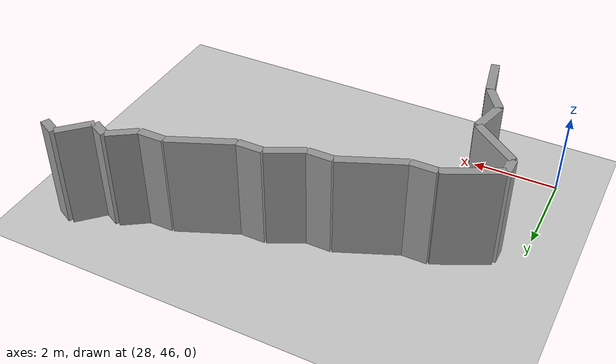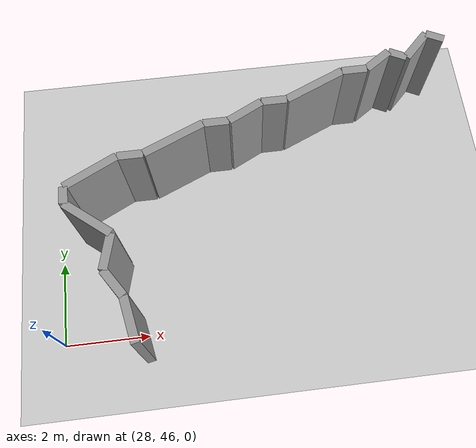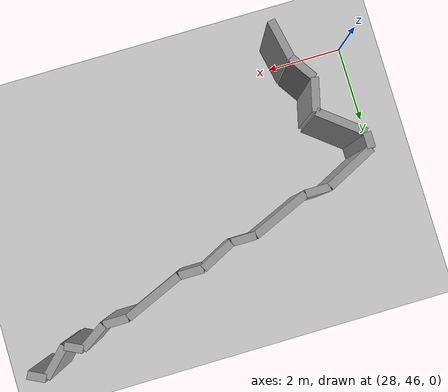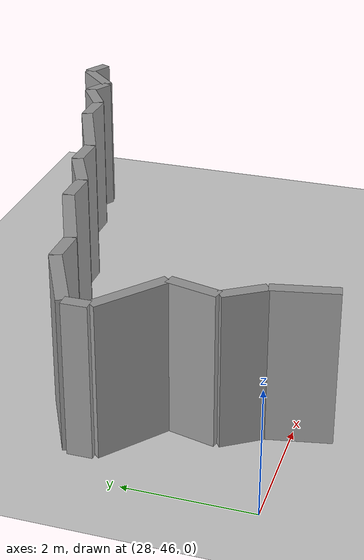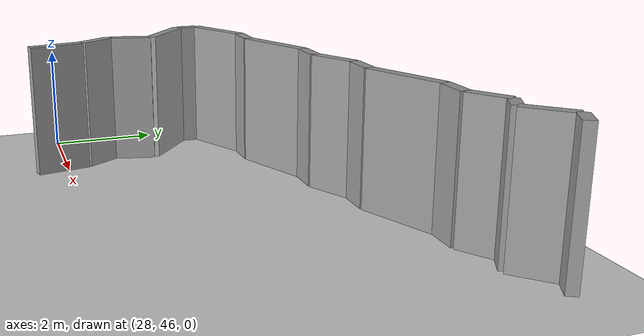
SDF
<sdf version="1.4">
 <world name="1_wall">
  <model name="ground_plane">
   <static>1</static>
   <link name="link">
    <collision name="collision">
     <geometry><plane><normal>0 0 1</normal><size>1000 1000</size></plane></geometry>
     <surface><friction><ode><mu>100</mu><mu2>50</mu2></ode></friction></surface>
    </collision>
    <visual name="visual">
     <cast_shadows>0</cast_shadows>
     <geometry><plane><normal>0 0 1</normal><size>10000 10000</size></plane></geometry>
     <material>
      <script><uri>file://media/materials/scripts/gazebo.material</uri><name>Gazebo/Grey</name></script>
     </material>
    </visual>
    <velocity_decay><linear>0</linear><angular>0</angular></velocity_decay>
   </link>
  </model>
  <model name="Wall_500">
   <static>1</static>
   <link name="Wall_500">
    <collision name="Wall_Collision_500">
     <geometry><box><size>1.01980390272 0.2 2.5</size></box></geometry>
     <pose>0 0 1.25 0 -0 0</pose>
    </collision>
    <visual name="Wall_Visual_500">
     <pose>0 0 1.25 0 -0 0</pose>
     <geometry><box><size>1.01980390272 0.2 2.5</size></box></geometry>
     <material>
      <script><uri>file://media/materials/scripts/gazebo.material</uri><name>Gazebo/Grey</name></script>
     </material>
    </visual>
    <velocity_decay><linear>0</linear><angular>0</angular></velocity_decay>
    <pose>29.9 45.9 0 0 0 1.76819188664</pose>
   </link>
  </model>
  <model name="Wall_501">
   <static>1</static>
   <link name="Wall_501">
    <collision name="Wall_Collision_501">
     <geometry><box><size>0.721110255093 0.2 2.5</size></box></geometry>
     <pose>0 0 1.25 0 -0 0</pose>
    </collision>
    <visual name="Wall_Visual_501">
     <pose>0 0 1.25 0 -0 0</pose>
     <geometry><box><size>0.721110255093 0.2 2.5</size></box></geometry>
     <material>
      <script><uri>file://media/materials/scripts/gazebo.material</uri><name>Gazebo/Grey</name></script>
     </material>
    </visual>
    <velocity_decay><linear>0</linear><angular>0</angular></velocity_decay>
    <pose>29.6 46.7 0 0 0 2.15879893034</pose>
   </link>
  </model>
  <model name="Wall_502">
   <static>1</static>
   <link name="Wall_502">
    <collision name="Wall_Collision_502">
     <geometry><box><size>0.824621125124 0.2 2.5</size></box></geometry>
     <pose>0 0 1.25 0 -0 0</pose>
    </collision>
    <visual name="Wall_Visual_502">
     <pose>0 0 1.25 0 -0 0</pose>
     <geometry><box><size>0.824621125124 0.2 2.5</size></box></geometry>
     <material>
      <script><uri>file://media/materials/scripts/gazebo.material</uri><name>Gazebo/Grey</name></script>
     </material>
    </visual>
    <velocity_decay><linear>0</linear><angular>0</angular></velocity_decay>
    <pose>29.5 47.4 0 0 0 1.32581766367</pose>
   </link>
  </model>
  <model name="Wall_503">
   <static>1</static>
   <link name="Wall_503">
    <collision name="Wall_Collision_503">
     <geometry><box><size>1.28062484749 0.2 2.5</size></box></geometry>
     <pose>0 0 1.25 0 -0 0</pose>
    </collision>
    <visual name="Wall_Visual_503">
     <pose>0 0 1.25 0 -0 0</pose>
     <geometry><box><size>1.28062484749 0.2 2.5</size></box></geometry>
     <material>
      <script><uri>file://media/materials/scripts/gazebo.material</uri><name>Gazebo/Grey</name></script>
     </material>
    </visual>
    <velocity_decay><linear>0</linear><angular>0</angular></velocity_decay>
    <pose>29.1 48.2 0 0 0 2.46685171137</pose>
   </link>
  </model>
  <model name="Wall_504">
   <static>1</static>
   <link name="Wall_504">
    <collision name="Wall_Collision_504">
     <geometry><box><size>0.4 0.2 2.5</size></box></geometry>
     <pose>0 0 1.25 0 -0 0</pose>
    </collision>
    <visual name="Wall_Visual_504">
     <pose>0 0 1.25 0 -0 0</pose>
     <geometry><box><size>0.4 0.2 2.5</size></box></geometry>
     <material>
      <script><uri>file://media/materials/scripts/gazebo.material</uri><name>Gazebo/Grey</name></script>
     </material>
    </visual>
    <velocity_decay><linear>0</linear><angular>0</angular></velocity_decay>
    <pose>28.6 48.8 0 0 0 1.57079632679</pose>
   </link>
  </model>
  <model name="Wall_505">
   <static>1</static>
   <link name="Wall_505">
    <collision name="Wall_Collision_505">
     <geometry><box><size>1.3416407865 0.2 2.5</size></box></geometry>
     <pose>0 0 1.25 0 -0 0</pose>
    </collision>
    <visual name="Wall_Visual_505">
     <pose>0 0 1.25 0 -0 0</pose>
     <geometry><box><size>1.3416407865 0.2 2.5</size></box></geometry>
     <material>
      <script><uri>file://media/materials/scripts/gazebo.material</uri><name>Gazebo/Grey</name></script>
     </material>
    </visual>
    <velocity_decay><linear>0</linear><angular>0</angular></velocity_decay>
    <pose>29.2 49.3 0 0 0 0.463647609001</pose>
   </link>
  </model>
  <model name="Wall_506">
   <static>1</static>
   <link name="Wall_506">
    <collision name="Wall_Collision_506">
     <geometry><box><size>0.6 0.2 2.5</size></box></geometry>
     <pose>0 0 1.25 0 -0 0</pose>
    </collision>
    <visual name="Wall_Visual_506">
     <pose>0 0 1.25 0 -0 0</pose>
     <geometry><box><size>0.6 0.2 2.5</size></box></geometry>
     <material>
      <script><uri>file://media/materials/scripts/gazebo.material</uri><name>Gazebo/Grey</name></script>
     </material>
    </visual>
    <velocity_decay><linear>0</linear><angular>0</angular></velocity_decay>
    <pose>30.1 49.6 0 0 0 0.0</pose>
   </link>
  </model>
  <model name="Wall_507">
   <static>1</static>
   <link name="Wall_507">
    <collision name="Wall_Collision_507">
     <geometry><box><size>1.52315462117 0.2 2.5</size></box></geometry>
     <pose>0 0 1.25 0 -0 0</pose>
    </collision>
    <visual name="Wall_Visual_507">
     <pose>0 0 1.25 0 -0 0</pose>
     <geometry><box><size>1.52315462117 0.2 2.5</size></box></geometry>
     <material>
      <script><uri>file://media/materials/scripts/gazebo.material</uri><name>Gazebo/Grey</name></script>
     </material>
    </visual>
    <velocity_decay><linear>0</linear><angular>0</angular></velocity_decay>
    <pose>31.1 49.9 0 0 0 0.404891786285</pose>
   </link>
  </model>
  <model name="Wall_508">
   <static>1</static>
   <link name="Wall_508">
    <collision name="Wall_Collision_508">
     <geometry><box><size>0.6 0.2 2.5</size></box></geometry>
     <pose>0 0 1.25 0 -0 0</pose>
    </collision>
    <visual name="Wall_Visual_508">
     <pose>0 0 1.25 0 -0 0</pose>
     <geometry><box><size>0.6 0.2 2.5</size></box></geometry>
     <material>
      <script><uri>file://media/materials/scripts/gazebo.material</uri><name>Gazebo/Grey</name></script>
     </material>
    </visual>
    <velocity_decay><linear>0</linear><angular>0</angular></velocity_decay>
    <pose>32.1 50.2 0 0 0 0.0</pose>
   </link>
  </model>
  <model name="Wall_509">
   <static>1</static>
   <link name="Wall_509">
    <collision name="Wall_Collision_509">
     <geometry><box><size>0.894427191 0.2 2.5</size></box></geometry>
     <pose>0 0 1.25 0 -0 0</pose>
    </collision>
    <visual name="Wall_Visual_509">
     <pose>0 0 1.25 0 -0 0</pose>
     <geometry><box><size>0.894427191 0.2 2.5</size></box></geometry>
     <material>
      <script><uri>file://media/materials/scripts/gazebo.material</uri><name>Gazebo/Grey</name></script>
     </material>
    </visual>
    <velocity_decay><linear>0</linear><angular>0</angular></velocity_decay>
    <pose>32.8 50.4 0 0 0 0.463647609001</pose>
   </link>
  </model>
  <model name="Wall_510">
   <static>1</static>
   <link name="Wall_510">
    <collision name="Wall_Collision_510">
     <geometry><box><size>0.6 0.2 2.5</size></box></geometry>
     <pose>0 0 1.25 0 -0 0</pose>
    </collision>
    <visual name="Wall_Visual_510">
     <pose>0 0 1.25 0 -0 0</pose>
     <geometry><box><size>0.6 0.2 2.5</size></box></geometry>
     <material>
      <script><uri>file://media/materials/scripts/gazebo.material</uri><name>Gazebo/Grey</name></script>
     </material>
    </visual>
    <velocity_decay><linear>0</linear><angular>0</angular></velocity_decay>
    <pose>33.5 50.6 0 0 0 0.0</pose>
   </link>
  </model>
  <model name="Wall_511">
   <static>1</static>
   <link name="Wall_511">
    <collision name="Wall_Collision_511">
     <geometry><box><size>1.52315462117 0.2 2.5</size></box></geometry>
     <pose>0 0 1.25 0 -0 0</pose>
    </collision>
    <visual name="Wall_Visual_511">
     <pose>0 0 1.25 0 -0 0</pose>
     <geometry><box><size>1.52315462117 0.2 2.5</size></box></geometry>
     <material>
      <script><uri>file://media/materials/scripts/gazebo.material</uri><name>Gazebo/Grey</name></script>
     </material>
    </visual>
    <velocity_decay><linear>0</linear><angular>0</angular></velocity_decay>
    <pose>34.5 50.9 0 0 0 0.404891786285</pose>
   </link>
  </model>
  <model name="Wall_512">
   <static>1</static>
   <link name="Wall_512">
    <collision name="Wall_Collision_512">
     <geometry><box><size>0.6 0.2 2.5</size></box></geometry>
     <pose>0 0 1.25 0 -0 0</pose>
    </collision>
    <visual name="Wall_Visual_512">
     <pose>0 0 1.25 0 -0 0</pose>
     <geometry><box><size>0.6 0.2 2.5</size></box></geometry>
     <material>
      <script><uri>file://media/materials/scripts/gazebo.material</uri><name>Gazebo/Grey</name></script>
     </material>
    </visual>
    <velocity_decay><linear>0</linear><angular>0</angular></velocity_decay>
    <pose>35.5 51.2 0 0 0 0.0</pose>
   </link>
  </model>
  <model name="Wall_513">
   <static>1</static>
   <link name="Wall_513">
    <collision name="Wall_Collision_513">
     <geometry><box><size>0.721110255093 0.2 2.5</size></box></geometry>
     <pose>0 0 1.25 0 -0 0</pose>
    </collision>
    <visual name="Wall_Visual_513">
     <pose>0 0 1.25 0 -0 0</pose>
     <geometry><box><size>0.721110255093 0.2 2.5</size></box></geometry>
     <material>
      <script><uri>file://media/materials/scripts/gazebo.material</uri><name>Gazebo/Grey</name></script>
     </material>
    </visual>
    <velocity_decay><linear>0</linear><angular>0</angular></velocity_decay>
    <pose>36.1 51.4 0 0 0 0.588002603548</pose>
   </link>
  </model>
  <model name="Wall_514">
   <static>1</static>
   <link name="Wall_514">
    <collision name="Wall_Collision_514">
     <geometry><box><size>0.4472135955 0.2 2.5</size></box></geometry>
     <pose>0 0 1.25 0 -0 0</pose>
    </collision>
    <visual name="Wall_Visual_514">
     <pose>0 0 1.25 0 -0 0</pose>
     <geometry><box><size>0.4472135955 0.2 2.5</size></box></geometry>
     <material>
      <script><uri>file://media/materials/scripts/gazebo.material</uri><name>Gazebo/Grey</name></script>
     </material>
    </visual>
    <velocity_decay><linear>0</linear><angular>0</angular></velocity_decay>
    <pose>36.6 51.5 0 0 0 -0.463647609001</pose>
   </link>
  </model>
  <model name="Wall_515">
   <static>1</static>
   <link name="Wall_515">
    <collision name="Wall_Collision_515">
     <geometry><box><size>0.848528137424 0.2 2.5</size></box></geometry>
     <pose>0 0 1.25 0 -0 0</pose>
    </collision>
    <visual name="Wall_Visual_515">
     <pose>0 0 1.25 0 -0 0</pose>
     <geometry><box><size>0.848528137424 0.2 2.5</size></box></geometry>
     <material>
      <script><uri>file://media/materials/scripts/gazebo.material</uri><name>Gazebo/Grey</name></script>
     </material>
    </visual>
    <velocity_decay><linear>0</linear><angular>0</angular></velocity_decay>
    <pose>37.1 51.7 0 0 0 0.785398163397</pose>
   </link>
  </model>
  <model name="Wall_516">
   <static>1</static>
   <link name="Wall_516">
    <collision name="Wall_Collision_516">
     <geometry><box><size>0.4472135955 0.2 2.5</size></box></geometry>
     <pose>0 0 1.25 0 -0 0</pose>
    </collision>
    <visual name="Wall_Visual_516">
     <pose>0 0 1.25 0 -0 0</pose>
     <geometry><box><size>0.4472135955 0.2 2.5</size></box></geometry>
     <material>
      <script><uri>file://media/materials/scripts/gazebo.material</uri><name>Gazebo/Grey</name></script>
     </material>
    </visual>
    <velocity_decay><linear>0</linear><angular>0</angular></velocity_decay>
    <pose>37.6 51.9 0 0 0 -0.463647609001</pose>
   </link>
  </model>
 </world>
</sdf>
